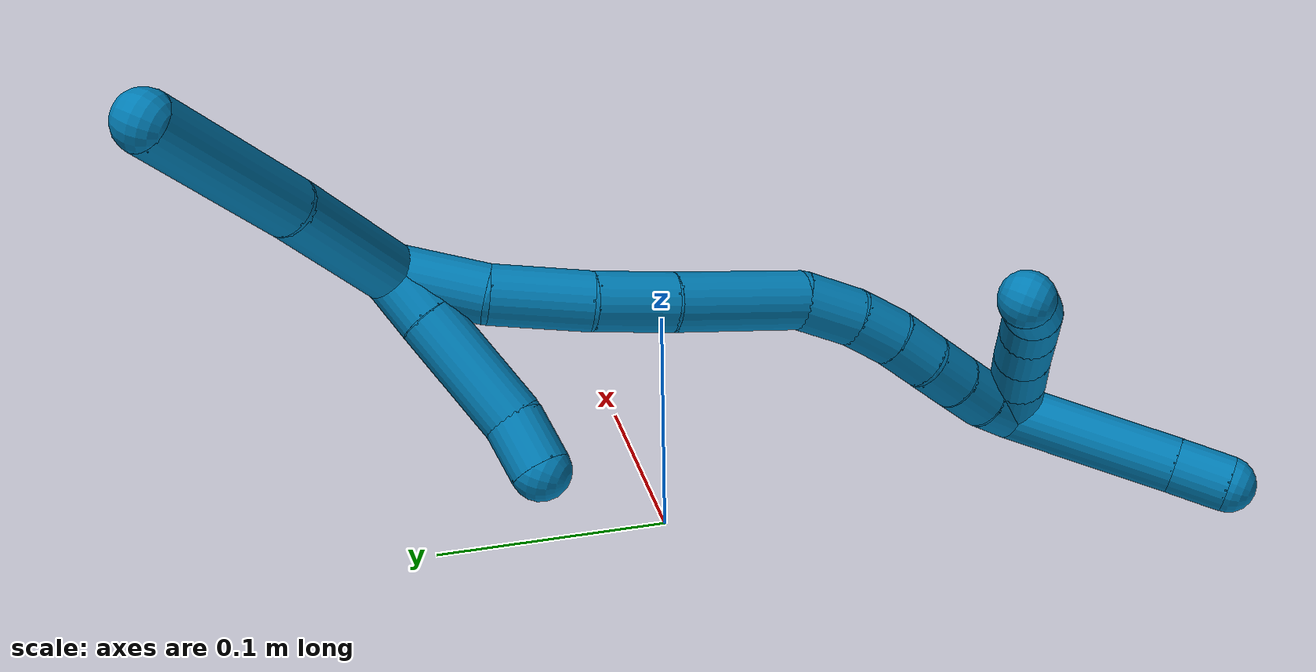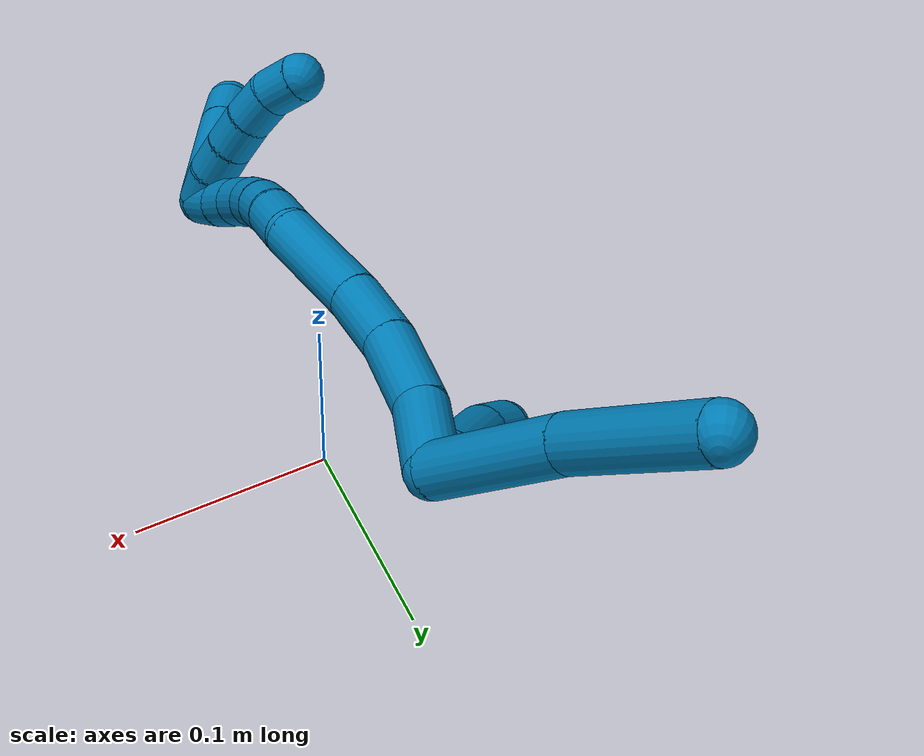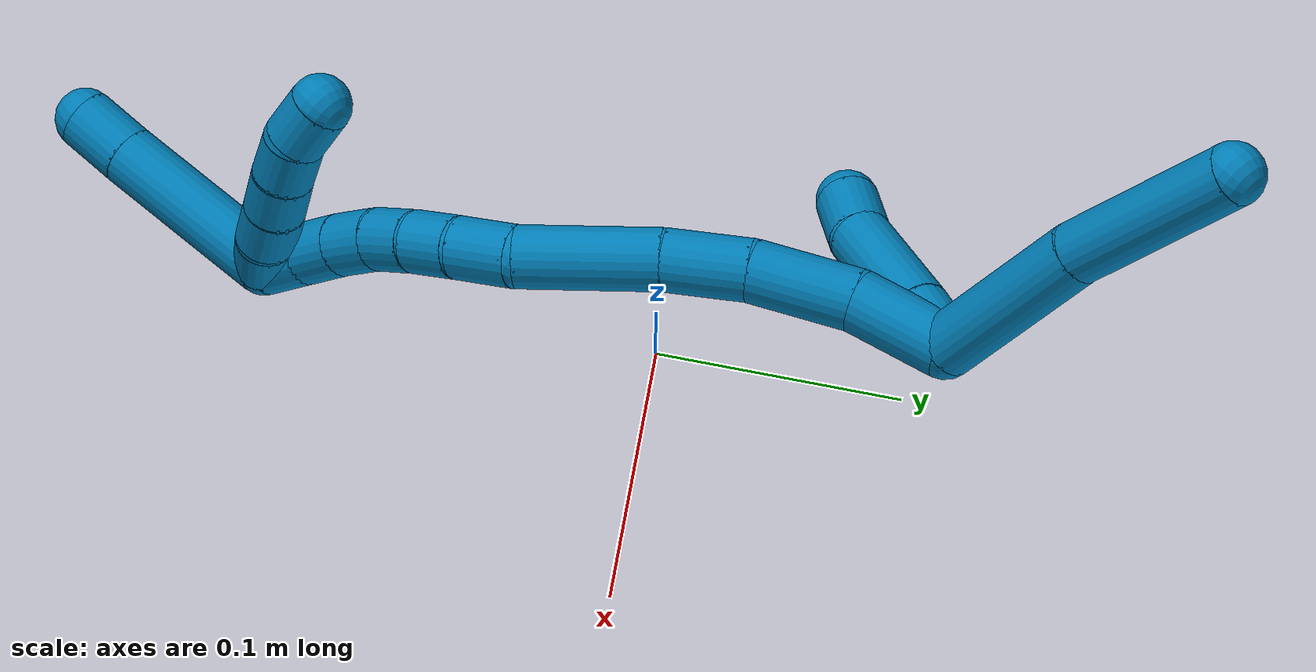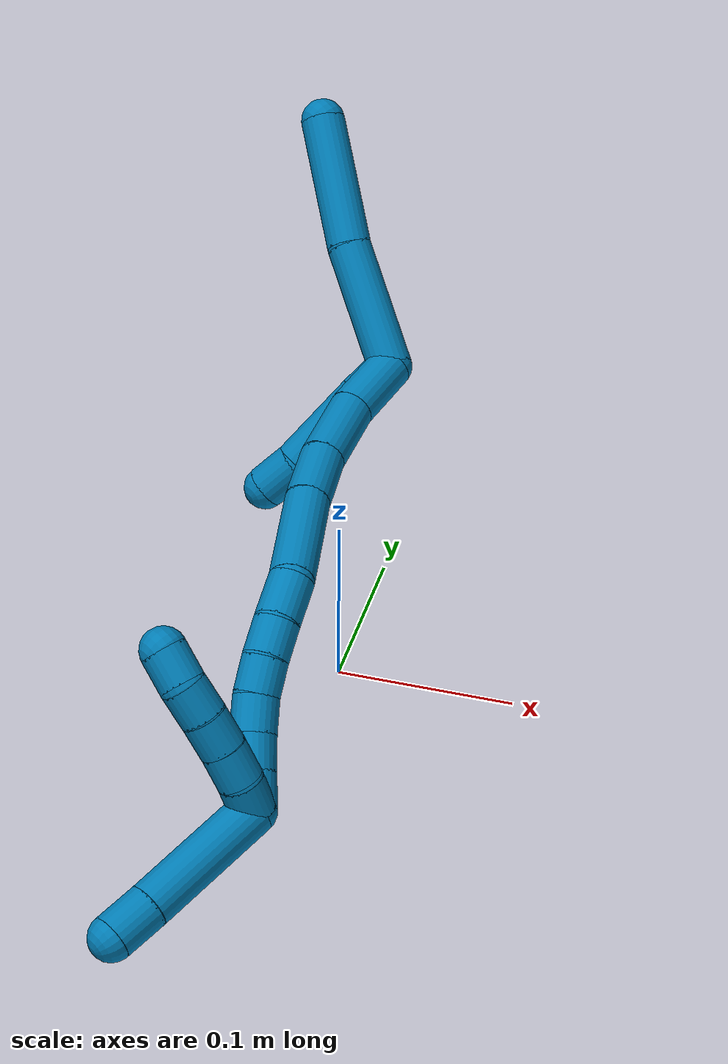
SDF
<sdf version="1.7">
 <world name="default">
  <model name="9">
   <static>0</static>
   <link name="9">
    <collision name="collision-cylinder-e_1_2_8">
     <pose>0.029728 0.017765 -0.011974 -2.16386 0.94633 -1.53252</pose>
     <geometry><cylinder><radius>0.0125</radius><length>0.073286</length></cylinder></geometry>
     <surface>
      <friction><ode><mu>1.16</mu><mu2>1.16</mu2><slip1>0</slip1><slip2>0</slip2></ode></friction>
      <contact><ode><kp>1e+06</kp><kd>1</kd><max_vel>0</max_vel><min_depth>0.001</min_depth></ode></contact>
     </surface>
    </collision>
    <visual name="visual-cylinder-e_1_2_8">
     <pose>0.029728 0.017765 -0.011974 -2.16386 0.94633 -1.53252</pose>
     <geometry><cylinder><radius>0.0125</radius><length>0.073286</length></cylinder></geometry>
     <material><ambient>0 0.490196 0.709804 1</ambient></material>
    </visual>
    <collision name="collision-cylinder-e_2_8_6">
     <pose>0.088716 0.053456 -0.041087 -2.33381 0.867715 -1.65138</pose>
     <geometry><cylinder><radius>0.0125</radius><length>0.076714</length></cylinder></geometry>
     <surface>
      <friction><ode><mu>1.16</mu><mu2>1.16</mu2><slip1>0</slip1><slip2>0</slip2></ode></friction>
      <contact><ode><kp>1e+06</kp><kd>1</kd><max_vel>0</max_vel><min_depth>0.001</min_depth></ode></contact>
     </surface>
    </collision>
    <visual name="visual-cylinder-e_2_8_6">
     <pose>0.088716 0.053456 -0.041087 -2.33381 0.867715 -1.65138</pose>
     <geometry><cylinder><radius>0.0125</radius><length>0.076714</length></cylinder></geometry>
     <material><ambient>0 0.490196 0.709804 1</ambient></material>
    </visual>
    <collision name="collision-cylinder-e_1_2_9">
     <pose>-0.003993 0.003795 0.010569 -0.344727 -0.341597 0.060036</pose>
     <geometry><cylinder><radius>0.0125</radius><length>0.023837</length></cylinder></geometry>
     <surface>
      <friction><ode><mu>1.16</mu><mu2>1.16</mu2><slip1>0</slip1><slip2>0</slip2></ode></friction>
      <contact><ode><kp>1e+06</kp><kd>1</kd><max_vel>0</max_vel><min_depth>0.001</min_depth></ode></contact>
     </surface>
    </collision>
    <visual name="visual-cylinder-e_1_2_9">
     <pose>-0.003993 0.003795 0.010569 -0.344727 -0.341597 0.060036</pose>
     <geometry><cylinder><radius>0.0125</radius><length>0.023837</length></cylinder></geometry>
     <material><ambient>0 0.490196 0.709804 1</ambient></material>
    </visual>
    <collision name="collision-cylinder-e_2_9_10">
     <pose>-0.017549 0.015132 0.044597 -0.311063 -0.370235 0.058708</pose>
     <geometry><cylinder><radius>0.0125</radius><length>0.052865</length></cylinder></geometry>
     <surface>
      <friction><ode><mu>1.16</mu><mu2>1.16</mu2><slip1>0</slip1><slip2>0</slip2></ode></friction>
      <contact><ode><kp>1e+06</kp><kd>1</kd><max_vel>0</max_vel><min_depth>0.001</min_depth></ode></contact>
     </surface>
    </collision>
    <visual name="visual-cylinder-e_2_9_10">
     <pose>-0.017549 0.015132 0.044597 -0.311063 -0.370235 0.058708</pose>
     <geometry><cylinder><radius>0.0125</radius><length>0.052865</length></cylinder></geometry>
     <material><ambient>0 0.490196 0.709804 1</ambient></material>
    </visual>
    <collision name="collision-cylinder-e_3_10_5">
     <pose>-0.030894 0.028446 0.077442 -0.551338 -0.330525 0.094287</pose>
     <geometry><cylinder><radius>0.0125</radius><length>0.023298</length></cylinder></geometry>
     <surface>
      <friction><ode><mu>1.16</mu><mu2>1.16</mu2><slip1>0</slip1><slip2>0</slip2></ode></friction>
      <contact><ode><kp>1e+06</kp><kd>1</kd><max_vel>0</max_vel><min_depth>0.001</min_depth></ode></contact>
     </surface>
    </collision>
    <visual name="visual-cylinder-e_3_10_5">
     <pose>-0.030894 0.028446 0.077442 -0.551338 -0.330525 0.094287</pose>
     <geometry><cylinder><radius>0.0125</radius><length>0.023298</length></cylinder></geometry>
     <material><ambient>0 0.490196 0.709804 1</ambient></material>
    </visual>
    <collision name="collision-cylinder-e_1_2_11">
     <pose>-0.001005 -0.005461 0.018712 0.283982 -0.051498 -0.007363</pose>
     <geometry><cylinder><radius>0.0125</radius><length>0.039037</length></cylinder></geometry>
     <surface>
      <friction><ode><mu>1.16</mu><mu2>1.16</mu2><slip1>0</slip1><slip2>0</slip2></ode></friction>
      <contact><ode><kp>1e+06</kp><kd>1</kd><max_vel>0</max_vel><min_depth>0.001</min_depth></ode></contact>
     </surface>
    </collision>
    <visual name="visual-cylinder-e_1_2_11">
     <pose>-0.001005 -0.005461 0.018712 0.283982 -0.051498 -0.007363</pose>
     <geometry><cylinder><radius>0.0125</radius><length>0.039037</length></cylinder></geometry>
     <material><ambient>0 0.490196 0.709804 1</ambient></material>
    </visual>
    <collision name="collision-cylinder-e_2_11_12">
     <pose>-0.003733 -0.021116 0.055888 0.50443 -0.081531 -0.021022</pose>
     <geometry><cylinder><radius>0.0125</radius><length>0.042321</length></cylinder></geometry>
     <surface>
      <friction><ode><mu>1.16</mu><mu2>1.16</mu2><slip1>0</slip1><slip2>0</slip2></ode></friction>
      <contact><ode><kp>1e+06</kp><kd>1</kd><max_vel>0</max_vel><min_depth>0.001</min_depth></ode></contact>
     </surface>
    </collision>
    <visual name="visual-cylinder-e_2_11_12">
     <pose>-0.003733 -0.021116 0.055888 0.50443 -0.081531 -0.021022</pose>
     <geometry><cylinder><radius>0.0125</radius><length>0.042321</length></cylinder></geometry>
     <material><ambient>0 0.490196 0.709804 1</ambient></material>
    </visual>
    <collision name="collision-cylinder-e_3_12_13">
     <pose>-0.008028 -0.04141 0.087875 0.641533 -0.151218 -0.050326</pose>
     <geometry><cylinder><radius>0.0125</radius><length>0.034149</length></cylinder></geometry>
     <surface>
      <friction><ode><mu>1.16</mu><mu2>1.16</mu2><slip1>0</slip1><slip2>0</slip2></ode></friction>
      <contact><ode><kp>1e+06</kp><kd>1</kd><max_vel>0</max_vel><min_depth>0.001</min_depth></ode></contact>
     </surface>
    </collision>
    <visual name="visual-cylinder-e_3_12_13">
     <pose>-0.008028 -0.04141 0.087875 0.641533 -0.151218 -0.050326</pose>
     <geometry><cylinder><radius>0.0125</radius><length>0.034149</length></cylinder></geometry>
     <material><ambient>0 0.490196 0.709804 1</ambient></material>
    </visual>
    <collision name="collision-cylinder-e_4_13_14">
     <pose>-0.016573 -0.070288 0.122542 0.726165 -0.208156 -0.079329</pose>
     <geometry><cylinder><radius>0.0125</radius><length>0.057801</length></cylinder></geometry>
     <surface>
      <friction><ode><mu>1.16</mu><mu2>1.16</mu2><slip1>0</slip1><slip2>0</slip2></ode></friction>
      <contact><ode><kp>1e+06</kp><kd>1</kd><max_vel>0</max_vel><min_depth>0.001</min_depth></ode></contact>
     </surface>
    </collision>
    <visual name="visual-cylinder-e_4_13_14">
     <pose>-0.016573 -0.070288 0.122542 0.726165 -0.208156 -0.079329</pose>
     <geometry><cylinder><radius>0.0125</radius><length>0.057801</length></cylinder></geometry>
     <material><ambient>0 0.490196 0.709804 1</ambient></material>
    </visual>
    <collision name="collision-cylinder-e_5_14_15">
     <pose>-0.027122 -0.094318 0.15452 0.451507 -0.363193 -0.084293</pose>
     <geometry><cylinder><radius>0.0125</radius><length>0.025763</length></cylinder></geometry>
     <surface>
      <friction><ode><mu>1.16</mu><mu2>1.16</mu2><slip1>0</slip1><slip2>0</slip2></ode></friction>
      <contact><ode><kp>1e+06</kp><kd>1</kd><max_vel>0</max_vel><min_depth>0.001</min_depth></ode></contact>
     </surface>
    </collision>
    <visual name="visual-cylinder-e_5_14_15">
     <pose>-0.027122 -0.094318 0.15452 0.451507 -0.363193 -0.084293</pose>
     <geometry><cylinder><radius>0.0125</radius><length>0.025763</length></cylinder></geometry>
     <material><ambient>0 0.490196 0.709804 1</ambient></material>
    </visual>
    <collision name="collision-cylinder-e_6_15_16">
     <pose>-0.036638 -0.102811 0.173907 0.362046 -0.495208 -0.092469</pose>
     <geometry><cylinder><radius>0.0125</radius><length>0.02079</length></cylinder></geometry>
     <surface>
      <friction><ode><mu>1.16</mu><mu2>1.16</mu2><slip1>0</slip1><slip2>0</slip2></ode></friction>
      <contact><ode><kp>1e+06</kp><kd>1</kd><max_vel>0</max_vel><min_depth>0.001</min_depth></ode></contact>
     </surface>
    </collision>
    <visual name="visual-cylinder-e_6_15_16">
     <pose>-0.036638 -0.102811 0.173907 0.362046 -0.495208 -0.092469</pose>
     <geometry><cylinder><radius>0.0125</radius><length>0.02079</length></cylinder></geometry>
     <material><ambient>0 0.490196 0.709804 1</ambient></material>
    </visual>
    <collision name="collision-cylinder-e_7_16_17">
     <pose>-0.047418 -0.10865 0.190205 0.32389 -0.620622 -0.104684</pose>
     <geometry><cylinder><radius>0.0125</radius><length>0.020084</length></cylinder></geometry>
     <surface>
      <friction><ode><mu>1.16</mu><mu2>1.16</mu2><slip1>0</slip1><slip2>0</slip2></ode></friction>
      <contact><ode><kp>1e+06</kp><kd>1</kd><max_vel>0</max_vel><min_depth>0.001</min_depth></ode></contact>
     </surface>
    </collision>
    <visual name="visual-cylinder-e_7_16_17">
     <pose>-0.047418 -0.10865 0.190205 0.32389 -0.620622 -0.104684</pose>
     <geometry><cylinder><radius>0.0125</radius><length>0.020084</length></cylinder></geometry>
     <material><ambient>0 0.490196 0.709804 1</ambient></material>
    </visual>
    <collision name="collision-cylinder-e_8_17_18">
     <pose>-0.059863 -0.11473 0.204635 0.479986 -0.719675 -0.18361</pose>
     <geometry><cylinder><radius>0.0125</radius><length>0.020043</length></cylinder></geometry>
     <surface>
      <friction><ode><mu>1.16</mu><mu2>1.16</mu2><slip1>0</slip1><slip2>0</slip2></ode></friction>
      <contact><ode><kp>1e+06</kp><kd>1</kd><max_vel>0</max_vel><min_depth>0.001</min_depth></ode></contact>
     </surface>
    </collision>
    <visual name="visual-cylinder-e_8_17_18">
     <pose>-0.059863 -0.11473 0.204635 0.479986 -0.719675 -0.18361</pose>
     <geometry><cylinder><radius>0.0125</radius><length>0.020043</length></cylinder></geometry>
     <material><ambient>0 0.490196 0.709804 1</ambient></material>
    </visual>
    <collision name="collision-cylinder-e_9_18_19">
     <pose>-0.073308 -0.122098 0.217498 0.56166 -0.752857 -0.227058</pose>
     <geometry><cylinder><radius>0.0125</radius><length>0.020007</length></cylinder></geometry>
     <surface>
      <friction><ode><mu>1.16</mu><mu2>1.16</mu2><slip1>0</slip1><slip2>0</slip2></ode></friction>
      <contact><ode><kp>1e+06</kp><kd>1</kd><max_vel>0</max_vel><min_depth>0.001</min_depth></ode></contact>
     </surface>
    </collision>
    <visual name="visual-cylinder-e_9_18_19">
     <pose>-0.073308 -0.122098 0.217498 0.56166 -0.752857 -0.227058</pose>
     <geometry><cylinder><radius>0.0125</radius><length>0.020007</length></cylinder></geometry>
     <material><ambient>0 0.490196 0.709804 1</ambient></material>
    </visual>
    <collision name="collision-cylinder-e_10_19_1">
     <pose>-0.086189 -0.131128 0.229768 0.701043 -0.648487 -0.244547</pose>
     <geometry><cylinder><radius>0.0125</radius><length>0.020004</length></cylinder></geometry>
     <surface>
      <friction><ode><mu>1.16</mu><mu2>1.16</mu2><slip1>0</slip1><slip2>0</slip2></ode></friction>
      <contact><ode><kp>1e+06</kp><kd>1</kd><max_vel>0</max_vel><min_depth>0.001</min_depth></ode></contact>
     </surface>
    </collision>
    <visual name="visual-cylinder-e_10_19_1">
     <pose>-0.086189 -0.131128 0.229768 0.701043 -0.648487 -0.244547</pose>
     <geometry><cylinder><radius>0.0125</radius><length>0.020004</length></cylinder></geometry>
     <material><ambient>0 0.490196 0.709804 1</ambient></material>
    </visual>
    <collision name="collision-cylinder-e_1_1_20">
     <pose>-0.082246 -0.136516 0.23534 2.69912 1.51323 2.67381</pose>
     <geometry><cylinder><radius>0.0125</radius><length>0.02</length></cylinder></geometry>
     <surface>
      <friction><ode><mu>1.16</mu><mu2>1.16</mu2><slip1>0</slip1><slip2>0</slip2></ode></friction>
      <contact><ode><kp>1e+06</kp><kd>1</kd><max_vel>0</max_vel><min_depth>0.001</min_depth></ode></contact>
     </surface>
    </collision>
    <visual name="visual-cylinder-e_1_1_20">
     <pose>-0.082246 -0.136516 0.23534 2.69912 1.51323 2.67381</pose>
     <geometry><cylinder><radius>0.0125</radius><length>0.02</length></cylinder></geometry>
     <material><ambient>0 0.490196 0.709804 1</ambient></material>
    </visual>
    <collision name="collision-cylinder-e_2_20_21">
     <pose>-0.06239 -0.135215 0.234456 -1.80145 1.41115 -1.64314</pose>
     <geometry><cylinder><radius>0.0125</radius><length>0.02</length></cylinder></geometry>
     <surface>
      <friction><ode><mu>1.16</mu><mu2>1.16</mu2><slip1>0</slip1><slip2>0</slip2></ode></friction>
      <contact><ode><kp>1e+06</kp><kd>1</kd><max_vel>0</max_vel><min_depth>0.001</min_depth></ode></contact>
     </surface>
    </collision>
    <visual name="visual-cylinder-e_2_20_21">
     <pose>-0.06239 -0.135215 0.234456 -1.80145 1.41115 -1.64314</pose>
     <geometry><cylinder><radius>0.0125</radius><length>0.02</length></cylinder></geometry>
     <material><ambient>0 0.490196 0.709804 1</ambient></material>
    </visual>
    <collision name="collision-cylinder-e_3_21_22">
     <pose>-0.042696 -0.131786 0.234154 -1.53857 1.38142 -1.34987</pose>
     <geometry><cylinder><radius>0.0125</radius><length>0.02</length></cylinder></geometry>
     <surface>
      <friction><ode><mu>1.16</mu><mu2>1.16</mu2><slip1>0</slip1><slip2>0</slip2></ode></friction>
      <contact><ode><kp>1e+06</kp><kd>1</kd><max_vel>0</max_vel><min_depth>0.001</min_depth></ode></contact>
     </surface>
    </collision>
    <visual name="visual-cylinder-e_3_21_22">
     <pose>-0.042696 -0.131786 0.234154 -1.53857 1.38142 -1.34987</pose>
     <geometry><cylinder><radius>0.0125</radius><length>0.02</length></cylinder></geometry>
     <material><ambient>0 0.490196 0.709804 1</ambient></material>
    </visual>
    <collision name="collision-cylinder-e_4_22_23">
     <pose>-0.023258 -0.127167 0.23434 -1.52492 1.29323 -1.24938</pose>
     <geometry><cylinder><radius>0.0125</radius><length>0.02</length></cylinder></geometry>
     <surface>
      <friction><ode><mu>1.16</mu><mu2>1.16</mu2><slip1>0</slip1><slip2>0</slip2></ode></friction>
      <contact><ode><kp>1e+06</kp><kd>1</kd><max_vel>0</max_vel><min_depth>0.001</min_depth></ode></contact>
     </surface>
    </collision>
    <visual name="visual-cylinder-e_4_22_23">
     <pose>-0.023258 -0.127167 0.23434 -1.52492 1.29323 -1.24938</pose>
     <geometry><cylinder><radius>0.0125</radius><length>0.02</length></cylinder></geometry>
     <material><ambient>0 0.490196 0.709804 1</ambient></material>
    </visual>
    <collision name="collision-cylinder-e_5_23_4">
     <pose>-0.005146 -0.119321 0.233148 -1.82325 1.01499 -1.24503</pose>
     <geometry><cylinder><radius>0.0125</radius><length>0.02</length></cylinder></geometry>
     <surface>
      <friction><ode><mu>1.16</mu><mu2>1.16</mu2><slip1>0</slip1><slip2>0</slip2></ode></friction>
      <contact><ode><kp>1e+06</kp><kd>1</kd><max_vel>0</max_vel><min_depth>0.001</min_depth></ode></contact>
     </surface>
    </collision>
    <visual name="visual-cylinder-e_5_23_4">
     <pose>-0.005146 -0.119321 0.233148 -1.82325 1.01499 -1.24503</pose>
     <geometry><cylinder><radius>0.0125</radius><length>0.02</length></cylinder></geometry>
     <material><ambient>0 0.490196 0.709804 1</ambient></material>
    </visual>
    <collision name="collision-cylinder-e_1_1_24">
     <pose>-0.092889 -0.140478 0.273166 0.11233 -0.017547 -0.000987</pose>
     <geometry><cylinder><radius>0.0125</radius><length>0.075098</length></cylinder></geometry>
     <surface>
      <friction><ode><mu>1.16</mu><mu2>1.16</mu2><slip1>0</slip1><slip2>0</slip2></ode></friction>
      <contact><ode><kp>1e+06</kp><kd>1</kd><max_vel>0</max_vel><min_depth>0.001</min_depth></ode></contact>
     </surface>
    </collision>
    <visual name="visual-cylinder-e_1_1_24">
     <pose>-0.092889 -0.140478 0.273166 0.11233 -0.017547 -0.000987</pose>
     <geometry><cylinder><radius>0.0125</radius><length>0.075098</length></cylinder></geometry>
     <material><ambient>0 0.490196 0.709804 1</ambient></material>
    </visual>
    <collision name="collision-cylinder-e_2_24_3">
     <pose>-0.093628 -0.145755 0.322878 0.085954 -0.006441 -0.000277</pose>
     <geometry><cylinder><radius>0.0125</radius><length>0.024902</length></cylinder></geometry>
     <surface>
      <friction><ode><mu>1.16</mu><mu2>1.16</mu2><slip1>0</slip1><slip2>0</slip2></ode></friction>
      <contact><ode><kp>1e+06</kp><kd>1</kd><max_vel>0</max_vel><min_depth>0.001</min_depth></ode></contact>
     </surface>
    </collision>
    <visual name="visual-cylinder-e_2_24_3">
     <pose>-0.093628 -0.145755 0.322878 0.085954 -0.006441 -0.000277</pose>
     <geometry><cylinder><radius>0.0125</radius><length>0.024902</length></cylinder></geometry>
     <material><ambient>0 0.490196 0.709804 1</ambient></material>
    </visual>
    <collision name="collision-sphere-3">
     <pose>-0.093708 -0.146824 0.335283 0 -0 0</pose>
     <geometry><sphere><radius>0.0125</radius></sphere></geometry>
     <surface>
      <friction><ode><mu>1.16</mu><mu2>1.16</mu2><slip1>0</slip1><slip2>0</slip2></ode></friction>
      <contact><ode><kp>1e+06</kp><kd>1</kd><max_vel>0</max_vel><min_depth>0.001</min_depth></ode></contact>
     </surface>
    </collision>
    <visual name="visual-sphere-3">
     <pose>-0.093708 -0.146824 0.335283 0 -0 0</pose>
     <geometry><sphere><radius>0.0125</radius></sphere></geometry>
     <material><ambient>0 0.490196 0.709804 1</ambient></material>
    </visual>
    <collision name="collision-sphere-24">
     <pose>-0.093548 -0.144686 0.310473 0 -0 0</pose>
     <geometry><sphere><radius>0.0125</radius></sphere></geometry>
     <surface>
      <friction><ode><mu>1.16</mu><mu2>1.16</mu2><slip1>0</slip1><slip2>0</slip2></ode></friction>
      <contact><ode><kp>1e+06</kp><kd>1</kd><max_vel>0</max_vel><min_depth>0.001</min_depth></ode></contact>
     </surface>
    </collision>
    <visual name="visual-sphere-24">
     <pose>-0.093548 -0.144686 0.310473 0 -0 0</pose>
     <geometry><sphere><radius>0.0125</radius></sphere></geometry>
     <material><ambient>0 0.490196 0.709804 1</ambient></material>
    </visual>
    <collision name="collision-sphere-4">
     <pose>0.003349 -0.114212 0.23183 0 -0 0</pose>
     <geometry><sphere><radius>0.0125</radius></sphere></geometry>
     <surface>
      <friction><ode><mu>1.16</mu><mu2>1.16</mu2><slip1>0</slip1><slip2>0</slip2></ode></friction>
      <contact><ode><kp>1e+06</kp><kd>1</kd><max_vel>0</max_vel><min_depth>0.001</min_depth></ode></contact>
     </surface>
    </collision>
    <visual name="visual-sphere-4">
     <pose>0.003349 -0.114212 0.23183 0 -0 0</pose>
     <geometry><sphere><radius>0.0125</radius></sphere></geometry>
     <material><ambient>0 0.490196 0.709804 1</ambient></material>
    </visual>
    <collision name="collision-sphere-23">
     <pose>-0.01364 -0.12443 0.234466 0 -0 0</pose>
     <geometry><sphere><radius>0.0125</radius></sphere></geometry>
     <surface>
      <friction><ode><mu>1.16</mu><mu2>1.16</mu2><slip1>0</slip1><slip2>0</slip2></ode></friction>
      <contact><ode><kp>1e+06</kp><kd>1</kd><max_vel>0</max_vel><min_depth>0.001</min_depth></ode></contact>
     </surface>
    </collision>
    <visual name="visual-sphere-23">
     <pose>-0.01364 -0.12443 0.234466 0 -0 0</pose>
     <geometry><sphere><radius>0.0125</radius></sphere></geometry>
     <material><ambient>0 0.490196 0.709804 1</ambient></material>
    </visual>
    <collision name="collision-sphere-22">
     <pose>-0.032875 -0.129904 0.234214 0 -0 0</pose>
     <geometry><sphere><radius>0.0125</radius></sphere></geometry>
     <surface>
      <friction><ode><mu>1.16</mu><mu2>1.16</mu2><slip1>0</slip1><slip2>0</slip2></ode></friction>
      <contact><ode><kp>1e+06</kp><kd>1</kd><max_vel>0</max_vel><min_depth>0.001</min_depth></ode></contact>
     </surface>
    </collision>
    <visual name="visual-sphere-22">
     <pose>-0.032875 -0.129904 0.234214 0 -0 0</pose>
     <geometry><sphere><radius>0.0125</radius></sphere></geometry>
     <material><ambient>0 0.490196 0.709804 1</ambient></material>
    </visual>
    <collision name="collision-sphere-21">
     <pose>-0.052517 -0.133667 0.234093 0 -0 0</pose>
     <geometry><sphere><radius>0.0125</radius></sphere></geometry>
     <surface>
      <friction><ode><mu>1.16</mu><mu2>1.16</mu2><slip1>0</slip1><slip2>0</slip2></ode></friction>
      <contact><ode><kp>1e+06</kp><kd>1</kd><max_vel>0</max_vel><min_depth>0.001</min_depth></ode></contact>
     </surface>
    </collision>
    <visual name="visual-sphere-21">
     <pose>-0.052517 -0.133667 0.234093 0 -0 0</pose>
     <geometry><sphere><radius>0.0125</radius></sphere></geometry>
     <material><ambient>0 0.490196 0.709804 1</ambient></material>
    </visual>
    <collision name="collision-sphere-20">
     <pose>-0.072263 -0.136762 0.23482 0 -0 0</pose>
     <geometry><sphere><radius>0.0125</radius></sphere></geometry>
     <surface>
      <friction><ode><mu>1.16</mu><mu2>1.16</mu2><slip1>0</slip1><slip2>0</slip2></ode></friction>
      <contact><ode><kp>1e+06</kp><kd>1</kd><max_vel>0</max_vel><min_depth>0.001</min_depth></ode></contact>
     </surface>
    </collision>
    <visual name="visual-sphere-20">
     <pose>-0.072263 -0.136762 0.23482 0 -0 0</pose>
     <geometry><sphere><radius>0.0125</radius></sphere></geometry>
     <material><ambient>0 0.490196 0.709804 1</ambient></material>
    </visual>
    <collision name="collision-sphere-5">
     <pose>-0.034675 0.034218 0.086828 0 -0 0</pose>
     <geometry><sphere><radius>0.0125</radius></sphere></geometry>
     <surface>
      <friction><ode><mu>1.16</mu><mu2>1.16</mu2><slip1>0</slip1><slip2>0</slip2></ode></friction>
      <contact><ode><kp>1e+06</kp><kd>1</kd><max_vel>0</max_vel><min_depth>0.001</min_depth></ode></contact>
     </surface>
    </collision>
    <visual name="visual-sphere-5">
     <pose>-0.034675 0.034218 0.086828 0 -0 0</pose>
     <geometry><sphere><radius>0.0125</radius></sphere></geometry>
     <material><ambient>0 0.490196 0.709804 1</ambient></material>
    </visual>
    <collision name="collision-sphere-10">
     <pose>-0.027114 0.022674 0.068056 0 -0 0</pose>
     <geometry><sphere><radius>0.0125</radius></sphere></geometry>
     <surface>
      <friction><ode><mu>1.16</mu><mu2>1.16</mu2><slip1>0</slip1><slip2>0</slip2></ode></friction>
      <contact><ode><kp>1e+06</kp><kd>1</kd><max_vel>0</max_vel><min_depth>0.001</min_depth></ode></contact>
     </surface>
    </collision>
    <visual name="visual-sphere-10">
     <pose>-0.027114 0.022674 0.068056 0 -0 0</pose>
     <geometry><sphere><radius>0.0125</radius></sphere></geometry>
     <material><ambient>0 0.490196 0.709804 1</ambient></material>
    </visual>
    <collision name="collision-sphere-6">
     <pose>0.117977 0.07138 -0.058227 0 -0 0</pose>
     <geometry><sphere><radius>0.0125</radius></sphere></geometry>
     <surface>
      <friction><ode><mu>1.16</mu><mu2>1.16</mu2><slip1>0</slip1><slip2>0</slip2></ode></friction>
      <contact><ode><kp>1e+06</kp><kd>1</kd><max_vel>0</max_vel><min_depth>0.001</min_depth></ode></contact>
     </surface>
    </collision>
    <visual name="visual-sphere-6">
     <pose>0.117977 0.07138 -0.058227 0 -0 0</pose>
     <geometry><sphere><radius>0.0125</radius></sphere></geometry>
     <material><ambient>0 0.490196 0.709804 1</ambient></material>
    </visual>
    <collision name="collision-sphere-9">
     <pose>-0.007985 0.00759 0.021139 0 -0 0</pose>
     <geometry><sphere><radius>0.0125</radius></sphere></geometry>
     <surface>
      <friction><ode><mu>1.16</mu><mu2>1.16</mu2><slip1>0</slip1><slip2>0</slip2></ode></friction>
      <contact><ode><kp>1e+06</kp><kd>1</kd><max_vel>0</max_vel><min_depth>0.001</min_depth></ode></contact>
     </surface>
    </collision>
    <visual name="visual-sphere-9">
     <pose>-0.007985 0.00759 0.021139 0 -0 0</pose>
     <geometry><sphere><radius>0.0125</radius></sphere></geometry>
     <material><ambient>0 0.490196 0.709804 1</ambient></material>
    </visual>
    <collision name="collision-sphere-2">
     <geometry><sphere><radius>0.0125</radius></sphere></geometry>
     <surface>
      <friction><ode><mu>1.16</mu><mu2>1.16</mu2><slip1>0</slip1><slip2>0</slip2></ode></friction>
      <contact><ode><kp>1e+06</kp><kd>1</kd><max_vel>0</max_vel><min_depth>0.001</min_depth></ode></contact>
     </surface>
    </collision>
    <visual name="visual-sphere-2">
     <geometry><sphere><radius>0.0125</radius></sphere></geometry>
     <material><ambient>0 0.490196 0.709804 1</ambient></material>
    </visual>
    <collision name="collision-sphere-19">
     <pose>-0.080148 -0.125986 0.223676 0 -0 0</pose>
     <geometry><sphere><radius>0.0125</radius></sphere></geometry>
     <surface>
      <friction><ode><mu>1.16</mu><mu2>1.16</mu2><slip1>0</slip1><slip2>0</slip2></ode></friction>
      <contact><ode><kp>1e+06</kp><kd>1</kd><max_vel>0</max_vel><min_depth>0.001</min_depth></ode></contact>
     </surface>
    </collision>
    <visual name="visual-sphere-19">
     <pose>-0.080148 -0.125986 0.223676 0 -0 0</pose>
     <geometry><sphere><radius>0.0125</radius></sphere></geometry>
     <material><ambient>0 0.490196 0.709804 1</ambient></material>
    </visual>
    <collision name="collision-sphere-8">
     <pose>0.059455 0.035531 -0.023948 0 -0 0</pose>
     <geometry><sphere><radius>0.0125</radius></sphere></geometry>
     <surface>
      <friction><ode><mu>1.16</mu><mu2>1.16</mu2><slip1>0</slip1><slip2>0</slip2></ode></friction>
      <contact><ode><kp>1e+06</kp><kd>1</kd><max_vel>0</max_vel><min_depth>0.001</min_depth></ode></contact>
     </surface>
    </collision>
    <visual name="visual-sphere-8">
     <pose>0.059455 0.035531 -0.023948 0 -0 0</pose>
     <geometry><sphere><radius>0.0125</radius></sphere></geometry>
     <material><ambient>0 0.490196 0.709804 1</ambient></material>
    </visual>
    <collision name="collision-sphere-11">
     <pose>-0.002009 -0.010923 0.037424 0 -0 0</pose>
     <geometry><sphere><radius>0.0125</radius></sphere></geometry>
     <surface>
      <friction><ode><mu>1.16</mu><mu2>1.16</mu2><slip1>0</slip1><slip2>0</slip2></ode></friction>
      <contact><ode><kp>1e+06</kp><kd>1</kd><max_vel>0</max_vel><min_depth>0.001</min_depth></ode></contact>
     </surface>
    </collision>
    <visual name="visual-sphere-11">
     <pose>-0.002009 -0.010923 0.037424 0 -0 0</pose>
     <geometry><sphere><radius>0.0125</radius></sphere></geometry>
     <material><ambient>0 0.490196 0.709804 1</ambient></material>
    </visual>
    <collision name="collision-sphere-12">
     <pose>-0.005456 -0.031309 0.074351 0 -0 0</pose>
     <geometry><sphere><radius>0.0125</radius></sphere></geometry>
     <surface>
      <friction><ode><mu>1.16</mu><mu2>1.16</mu2><slip1>0</slip1><slip2>0</slip2></ode></friction>
      <contact><ode><kp>1e+06</kp><kd>1</kd><max_vel>0</max_vel><min_depth>0.001</min_depth></ode></contact>
     </surface>
    </collision>
    <visual name="visual-sphere-12">
     <pose>-0.005456 -0.031309 0.074351 0 -0 0</pose>
     <geometry><sphere><radius>0.0125</radius></sphere></geometry>
     <material><ambient>0 0.490196 0.709804 1</ambient></material>
    </visual>
    <collision name="collision-sphere-13">
     <pose>-0.0106 -0.051512 0.101398 0 -0 0</pose>
     <geometry><sphere><radius>0.0125</radius></sphere></geometry>
     <surface>
      <friction><ode><mu>1.16</mu><mu2>1.16</mu2><slip1>0</slip1><slip2>0</slip2></ode></friction>
      <contact><ode><kp>1e+06</kp><kd>1</kd><max_vel>0</max_vel><min_depth>0.001</min_depth></ode></contact>
     </surface>
    </collision>
    <visual name="visual-sphere-13">
     <pose>-0.0106 -0.051512 0.101398 0 -0 0</pose>
     <geometry><sphere><radius>0.0125</radius></sphere></geometry>
     <material><ambient>0 0.490196 0.709804 1</ambient></material>
    </visual>
    <collision name="collision-sphere-14">
     <pose>-0.022545 -0.089064 0.143685 0 -0 0</pose>
     <geometry><sphere><radius>0.0125</radius></sphere></geometry>
     <surface>
      <friction><ode><mu>1.16</mu><mu2>1.16</mu2><slip1>0</slip1><slip2>0</slip2></ode></friction>
      <contact><ode><kp>1e+06</kp><kd>1</kd><max_vel>0</max_vel><min_depth>0.001</min_depth></ode></contact>
     </surface>
    </collision>
    <visual name="visual-sphere-14">
     <pose>-0.022545 -0.089064 0.143685 0 -0 0</pose>
     <geometry><sphere><radius>0.0125</radius></sphere></geometry>
     <material><ambient>0 0.490196 0.709804 1</ambient></material>
    </visual>
    <collision name="collision-sphere-15">
     <pose>-0.031698 -0.099571 0.165354 0 -0 0</pose>
     <geometry><sphere><radius>0.0125</radius></sphere></geometry>
     <surface>
      <friction><ode><mu>1.16</mu><mu2>1.16</mu2><slip1>0</slip1><slip2>0</slip2></ode></friction>
      <contact><ode><kp>1e+06</kp><kd>1</kd><max_vel>0</max_vel><min_depth>0.001</min_depth></ode></contact>
     </surface>
    </collision>
    <visual name="visual-sphere-15">
     <pose>-0.031698 -0.099571 0.165354 0 -0 0</pose>
     <geometry><sphere><radius>0.0125</radius></sphere></geometry>
     <material><ambient>0 0.490196 0.709804 1</ambient></material>
    </visual>
    <collision name="collision-sphere-16">
     <pose>-0.041578 -0.10605 0.182461 0 -0 0</pose>
     <geometry><sphere><radius>0.0125</radius></sphere></geometry>
     <surface>
      <friction><ode><mu>1.16</mu><mu2>1.16</mu2><slip1>0</slip1><slip2>0</slip2></ode></friction>
      <contact><ode><kp>1e+06</kp><kd>1</kd><max_vel>0</max_vel><min_depth>0.001</min_depth></ode></contact>
     </surface>
    </collision>
    <visual name="visual-sphere-16">
     <pose>-0.041578 -0.10605 0.182461 0 -0 0</pose>
     <geometry><sphere><radius>0.0125</radius></sphere></geometry>
     <material><ambient>0 0.490196 0.709804 1</ambient></material>
    </visual>
    <collision name="collision-sphere-17">
     <pose>-0.053258 -0.11125 0.19795 0 -0 0</pose>
     <geometry><sphere><radius>0.0125</radius></sphere></geometry>
     <surface>
      <friction><ode><mu>1.16</mu><mu2>1.16</mu2><slip1>0</slip1><slip2>0</slip2></ode></friction>
      <contact><ode><kp>1e+06</kp><kd>1</kd><max_vel>0</max_vel><min_depth>0.001</min_depth></ode></contact>
     </surface>
    </collision>
    <visual name="visual-sphere-17">
     <pose>-0.053258 -0.11125 0.19795 0 -0 0</pose>
     <geometry><sphere><radius>0.0125</radius></sphere></geometry>
     <material><ambient>0 0.490196 0.709804 1</ambient></material>
    </visual>
    <collision name="collision-sphere-18">
     <pose>-0.066469 -0.11821 0.21132 0 -0 0</pose>
     <geometry><sphere><radius>0.0125</radius></sphere></geometry>
     <surface>
      <friction><ode><mu>1.16</mu><mu2>1.16</mu2><slip1>0</slip1><slip2>0</slip2></ode></friction>
      <contact><ode><kp>1e+06</kp><kd>1</kd><max_vel>0</max_vel><min_depth>0.001</min_depth></ode></contact>
     </surface>
    </collision>
    <visual name="visual-sphere-18">
     <pose>-0.066469 -0.11821 0.21132 0 -0 0</pose>
     <geometry><sphere><radius>0.0125</radius></sphere></geometry>
     <material><ambient>0 0.490196 0.709804 1</ambient></material>
    </visual>
    <collision name="collision-sphere-1">
     <pose>-0.09223 -0.13627 0.23586 0 -0 0</pose>
     <geometry><sphere><radius>0.0125</radius></sphere></geometry>
     <surface>
      <friction><ode><mu>1.16</mu><mu2>1.16</mu2><slip1>0</slip1><slip2>0</slip2></ode></friction>
      <contact><ode><kp>1e+06</kp><kd>1</kd><max_vel>0</max_vel><min_depth>0.001</min_depth></ode></contact>
     </surface>
    </collision>
    <visual name="visual-sphere-1">
     <pose>-0.09223 -0.13627 0.23586 0 -0 0</pose>
     <geometry><sphere><radius>0.0125</radius></sphere></geometry>
     <material><ambient>0 0.490196 0.709804 1</ambient></material>
    </visual>
    <inertial>
     <pose>-0.019484 -0.054563 0.120017 0 -0 0</pose>
     <mass>0.75</mass>
     <inertia><ixx>5.8e-05</ixx><ixy>0</ixy><ixz>0</ixz><iyy>0.0001</iyy><iyz>0</iyz><izz>-3.6e-05</izz></inertia>
    </inertial>
   </link>
   <pose>-0.00145 0.110859 0.135736 -2.25153 -1.1631 -3.13107</pose>
  </model>
 </world>
</sdf>
